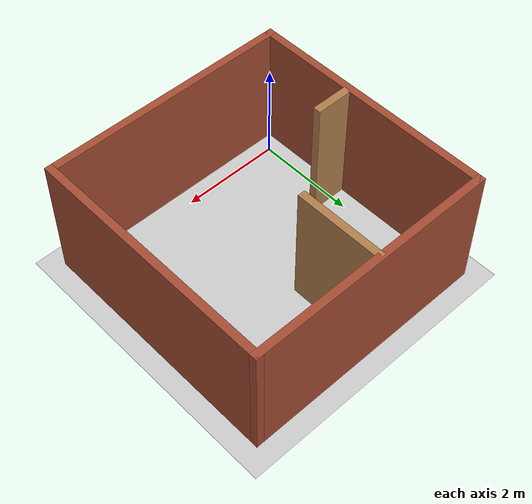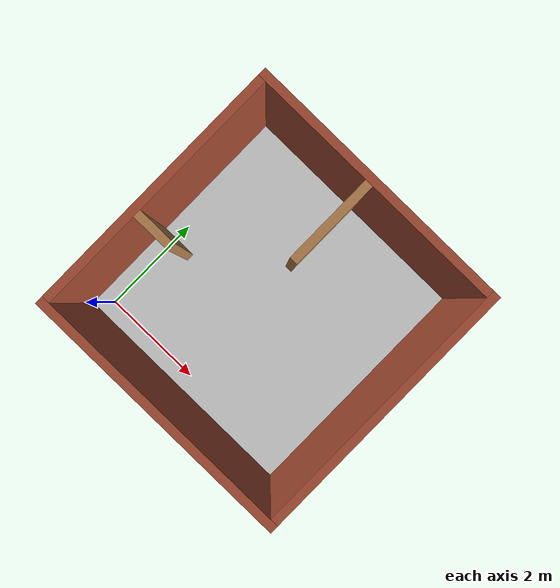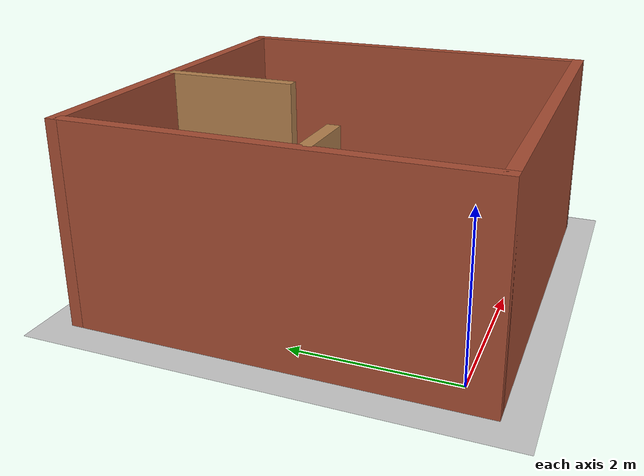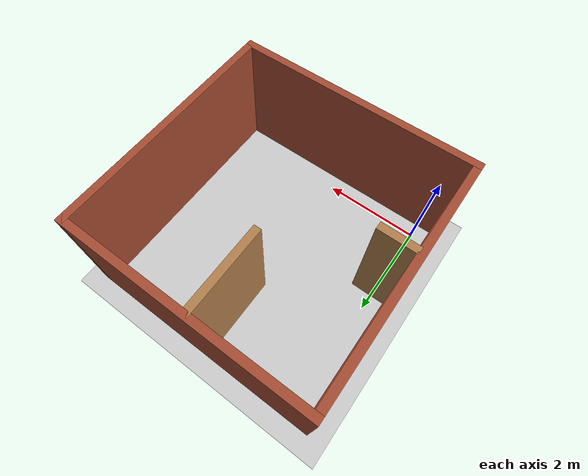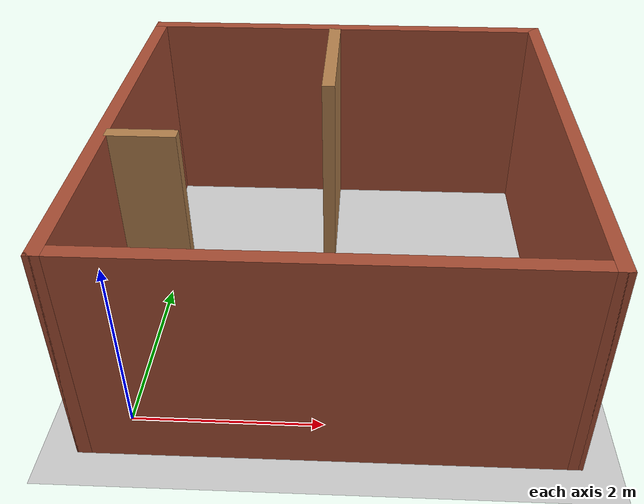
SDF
<sdf version="1.7">
 <world name="default">
  <light name="sun" type="directional">
   <pose>0 0 10 0 -0 0</pose>
   <diffuse>0.8 0.8 0.8 1</diffuse>
   <specular>0.2 0.2 0.2 1</specular>
   <attenuation>
    <range>1000</range>
    <constant>0.9</constant>
    <linear>0.01</linear>
    <quadratic>0.001</quadratic>
   </attenuation>
   <direction>-0.5 0.1 -0.9</direction>
   <spot><inner_angle>0</inner_angle><outer_angle>0</outer_angle><falloff>0</falloff></spot>
  </light>
  <model name="ground_plane">
   <static>1</static>
   <link name="link">
    <collision name="collision">
     <geometry><plane><normal>0 0 1</normal><size>100 100</size></plane></geometry>
     <surface>
      <contact><collide_bitmask>65535</collide_bitmask></contact>
      <friction><ode><mu>100</mu><mu2>50</mu2></ode></friction>
     </surface>
    </collision>
    <visual name="visual">
     <cast_shadows>0</cast_shadows>
     <geometry><plane><normal>0 0 1</normal><size>100 100</size></plane></geometry>
     <material>
      <script><uri>file://media/materials/scripts/gazebo.material</uri><name>Gazebo/Grey</name></script>
     </material>
    </visual>
   </link>
  </model>
  <gravity>0 0 -9.8</gravity>
  <magnetic_field>6e-06 2.3e-05 -4.2e-05</magnetic_field>
  <atmosphere type="adiabatic"/>
  <physics type="ode">
   <max_step_size>0.001</max_step_size>
   <real_time_factor>1</real_time_factor>
   <real_time_update_rate>1000</real_time_update_rate>
  </physics>
  <scene><ambient>0.4 0.4 0.4 1</ambient><background>0.7 0.7 0.7 1</background><shadows>1</shadows></scene>
  <spherical_coordinates>
   <surface_model>EARTH_WGS84</surface_model>
   <latitude_deg>0</latitude_deg>
   <longitude_deg>0</longitude_deg>
   <elevation>0</elevation>
   <heading_deg>0</heading_deg>
  </spherical_coordinates>
  <model name="map1">
   <pose>2.85151 2.05105 0 0 -0 0</pose>
   <link name="Wall_5">
    <collision name="Wall_5_Collision">
     <geometry><box><size>5 0.15 2.5</size></box></geometry>
     <pose>0 0 1.25 0 -0 0</pose>
    </collision>
    <visual name="Wall_5_Visual">
     <pose>0 0 1.25 0 -0 0</pose>
     <geometry><box><size>5 0.15 2.5</size></box></geometry>
     <material>
      <script><uri>file://media/materials/scripts/gazebo.material</uri><name>Gazebo/Bricks</name></script>
      <ambient>1 1 1 1</ambient>
     </material>
     <meta><layer>0</layer></meta>
    </visual>
    <pose>-0.789011 -2.425 0 0 -0 0</pose>
   </link>
   <link name="Wall_6">
    <collision name="Wall_6_Collision">
     <geometry><box><size>5 0.15 2.5</size></box></geometry>
     <pose>0 0 1.25 0 -0 0</pose>
    </collision>
    <visual name="Wall_6_Visual">
     <pose>0 0 1.25 0 -0 0</pose>
     <geometry><box><size>5 0.15 2.5</size></box></geometry>
     <material>
      <script><uri>file://media/materials/scripts/gazebo.material</uri><name>Gazebo/Bricks</name></script>
      <ambient>1 1 1 1</ambient>
     </material>
     <meta><layer>0</layer></meta>
    </visual>
    <pose>1.63599 0 0 0 -0 1.5708</pose>
   </link>
   <link name="Wall_7">
    <collision name="Wall_7_Collision">
     <geometry><box><size>5 0.15 2.5</size></box></geometry>
     <pose>0 0 1.25 0 -0 0</pose>
    </collision>
    <visual name="Wall_7_Visual">
     <pose>0 0 1.25 0 -0 0</pose>
     <geometry><box><size>5 0.15 2.5</size></box></geometry>
     <material>
      <script><uri>file://media/materials/scripts/gazebo.material</uri><name>Gazebo/Bricks</name></script>
      <ambient>1 1 1 1</ambient>
     </material>
     <meta><layer>0</layer></meta>
    </visual>
    <pose>-0.789011 2.425 0 0 -0 3.14159</pose>
   </link>
   <link name="Wall_8">
    <collision name="Wall_8_Collision">
     <geometry><box><size>5 0.15 2.5</size></box></geometry>
     <pose>0 0 1.25 0 -0 0</pose>
    </collision>
    <visual name="Wall_8_Visual">
     <pose>0 0 1.25 0 -0 0</pose>
     <geometry><box><size>5 0.15 2.5</size></box></geometry>
     <material>
      <script><uri>file://media/materials/scripts/gazebo.material</uri><name>Gazebo/Bricks</name></script>
      <ambient>1 1 1 1</ambient>
     </material>
     <meta><layer>0</layer></meta>
    </visual>
    <pose>-3.21401 0 0 0 -0 -1.5708</pose>
   </link>
   <static>1</static>
  </model>
  <model name="wall2m">
   <pose>2.73965 3.99769 0 0 -0 0</pose>
   <link name="Wall_4">
    <collision name="Wall_4_Collision">
     <geometry><box><size>1.75 0.15 2.5</size></box></geometry>
     <pose>0 0 1.25 0 -0 0</pose>
    </collision>
    <visual name="Wall_4_Visual">
     <pose>0 0 1.25 0 -0 0</pose>
     <geometry><box><size>1.75 0.15 2.5</size></box></geometry>
     <material>
      <script><uri>file://media/materials/scripts/gazebo.material</uri><name>Gazebo/Wood</name></script>
      <ambient>1 1 1 1</ambient>
     </material>
     <meta><layer>0</layer></meta>
    </visual>
    <pose>-0.8225 -0.3725 0 0 -0 -1.5708</pose>
   </link>
   <static>1</static>
  </model>
  <model name="Untitled">
   <pose>0.591611 2.23291 0 0 -0 0</pose>
   <link name="Wall_6">
    <collision name="Wall_6_Collision">
     <geometry><box><size>0.75 0.15 2.5</size></box></geometry>
     <pose>0 0 1.25 0 -0 0</pose>
    </collision>
    <visual name="Wall_6_Visual">
     <pose>0 0 1.25 0 -0 0</pose>
     <geometry><box><size>0.75 0.15 2.5</size></box></geometry>
     <material>
      <script><uri>file://media/materials/scripts/gazebo.material</uri><name>Gazebo/Wood</name></script>
      <ambient>1 1 1 1</ambient>
     </material>
     <meta><layer>0</layer></meta>
    </visual>
    <pose>-0.5375 -0.6275 0 0 -0 0</pose>
   </link>
   <static>1</static>
  </model>
 </world>
</sdf>
